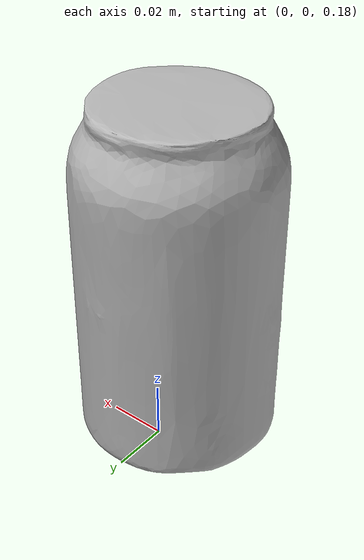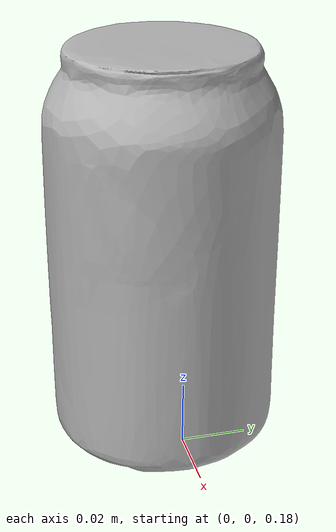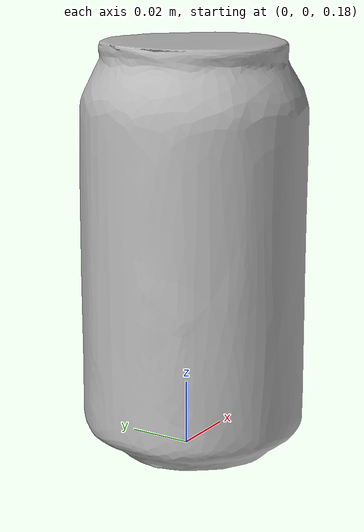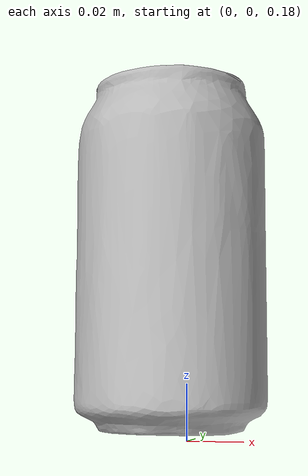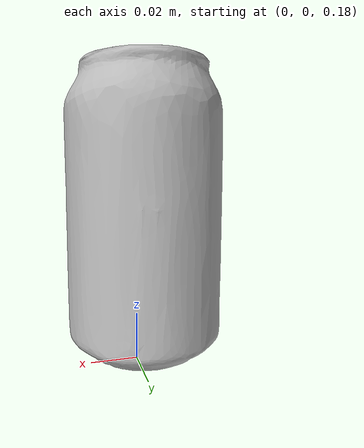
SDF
<?xml version="1.0"?>
<sdf version="1.5">
  <model name="coke_can">
     <link name='link'>
      <pose>0.0 0 0.0 0 0 0</pose>
      <inertial>
        <mass>0.1</mass>
        <inertia>
          <ixx>0.01</ixx>
          <ixy>0</ixy>
          <ixz>0</ixz>
          <iyy>0.01</iyy>
          <iyz>0</iyz>
          <izz>0.01</izz>
        </inertia>
      </inertial>
      <collision name="collision">
        <geometry>
          <mesh>
            <uri>model://coke_can/meshes/coke_can.dae</uri>
          </mesh>
        </geometry>
       <surface>
            <friction>
              <ode>
                <mu>50.0</mu>
                <mu2>50.0</mu2>
              </ode>
            </friction>
            <contact>
              <ode>
                <kp>1000000.0</kp>
                <kd>100.0</kd>
                <max_vel>1.0</max_vel>
                <min_depth>0.0005</min_depth>
              </ode>
            </contact>
          </surface>
      </collision>

      <visual name="visual">
        <geometry>
          <mesh>
            <uri>model://coke_can/meshes/coke_can.dae</uri>
          </mesh>
        </geometry>
      </visual>
    </link>
  </model>
</sdf>
